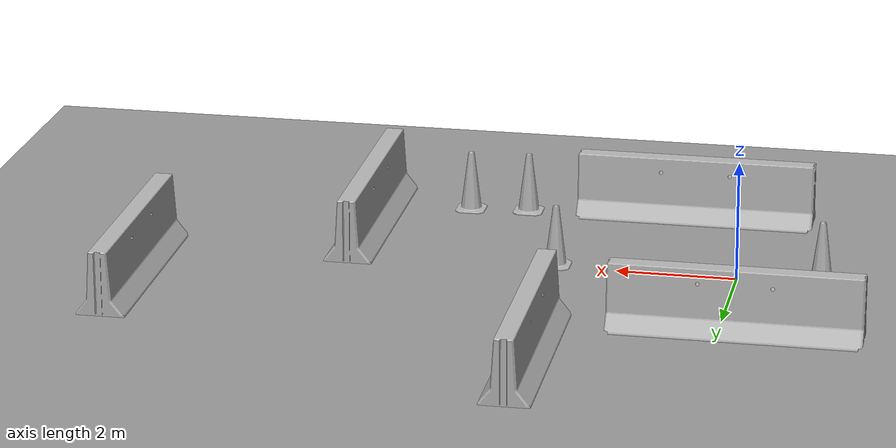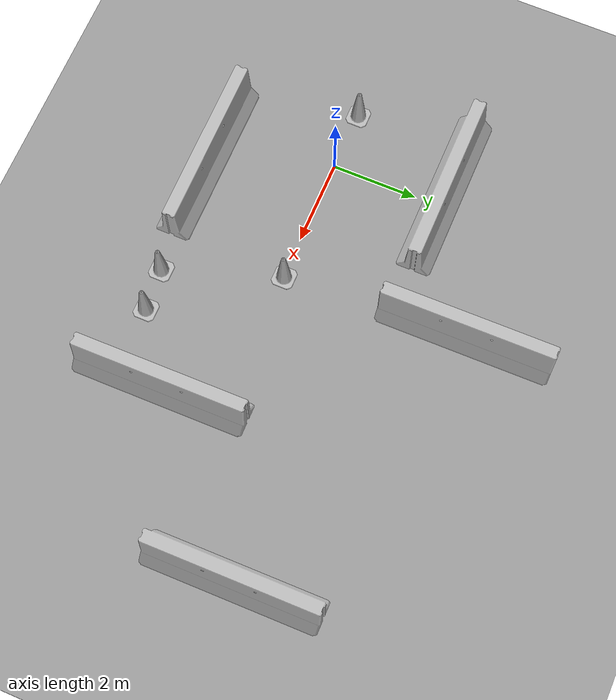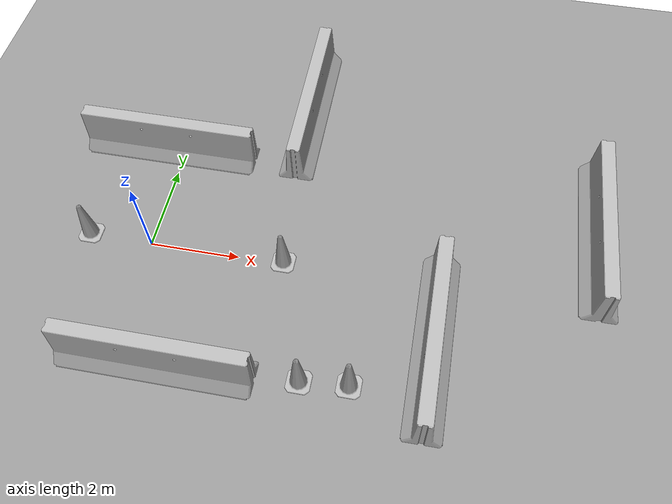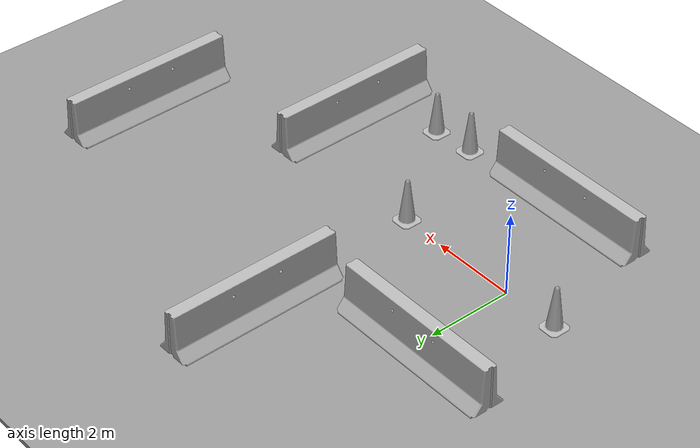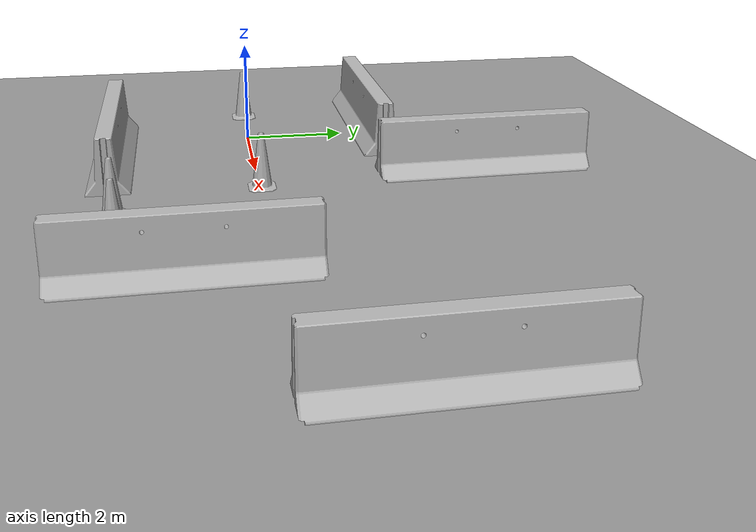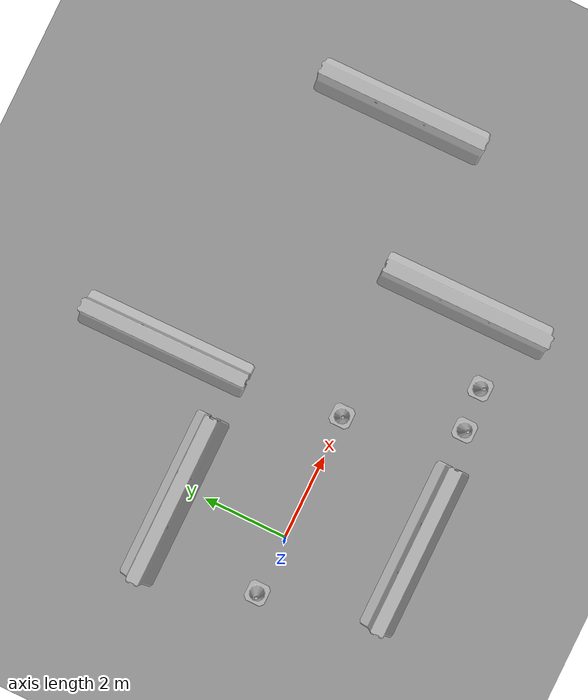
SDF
<sdf version="1.7">
 <world name="default">
  <plugin name="gazebo_occupancy_map" filename="libgazebo_2Dmap_plugin.so">
   <map_resolution>0.1</map_resolution>
   <map_height>0.3</map_height>
   <map_size_x>100</map_size_x>
   <map_size_y>100</map_size_y>
   <init_robot_x>0</init_robot_x>
   <init_robot_y>0</init_robot_y>
  </plugin>
  <light name="sun" type="directional">
   <pose>0 0 10 0 -0 0</pose>
   <diffuse>0.8 0.8 0.8 1</diffuse>
   <specular>0.2 0.2 0.2 1</specular>
   <attenuation>
    <range>1000</range>
    <constant>0.9</constant>
    <linear>0.01</linear>
    <quadratic>0.001</quadratic>
   </attenuation>
   <direction>-0.5 0.1 -0.9</direction>
   <spot><inner_angle>0</inner_angle><outer_angle>0</outer_angle><falloff>0</falloff></spot>
  </light>
  <model name="ground_plane">
   <static>1</static>
   <link name="link">
    <collision name="collision">
     <geometry><plane><normal>0 0 1</normal><size>100 100</size></plane></geometry>
     <surface>
      <contact><collide_bitmask>65535</collide_bitmask></contact>
      <friction><ode><mu>100</mu><mu2>50</mu2></ode></friction>
     </surface>
    </collision>
    <visual name="visual">
     <cast_shadows>0</cast_shadows>
     <geometry><plane><normal>0 0 1</normal><size>100 100</size></plane></geometry>
     <material>
      <script><uri>file://media/materials/scripts/gazebo.material</uri><name>Gazebo/Grey</name></script>
     </material>
    </visual>
   </link>
  </model>
  <gravity>0 0 -9.8</gravity>
  <magnetic_field>6e-06 2.3e-05 -4.2e-05</magnetic_field>
  <atmosphere type="adiabatic"/>
  <physics type="ode">
   <max_step_size>0.001</max_step_size>
   <real_time_factor>1</real_time_factor>
   <real_time_update_rate>1000</real_time_update_rate>
  </physics>
  <scene><ambient>0.4 0.4 0.4 1</ambient><background>0.7 0.7 0.7 1</background><shadows>0</shadows></scene>
  <spherical_coordinates>
   <surface_model>EARTH_WGS84</surface_model>
   <latitude_deg>0</latitude_deg>
   <longitude_deg>0</longitude_deg>
   <elevation>0</elevation>
   <heading_deg>0</heading_deg>
  </spherical_coordinates>
  <model name="ground_plane_0">
   <static>1</static>
   <link name="link">
    <collision name="collision">
     <geometry><plane><normal>0 0 1</normal><size>200 200</size></plane></geometry>
     <surface>
      <contact><collide_bitmask>65535</collide_bitmask></contact>
      <friction><ode><mu>100</mu><mu2>50</mu2></ode></friction>
     </surface>
    </collision>
    <visual name="visual">
     <cast_shadows>0</cast_shadows>
     <geometry><plane><normal>0 0 1</normal><size>100 100</size></plane></geometry>
     <material>
      <script><uri>file://media/materials/scripts/gazebo.material</uri><name>Gazebo/Grey</name></script>
     </material>
    </visual>
   </link>
   <pose>0.399593 -2.94754 0 0 -0 0</pose>
  </model>
  <model name="Construction Cone">
   <link name="link">
    <collision name="collision">
     <geometry>
      <mesh><scale>10 10 10</scale><uri>model://construction_cone/meshes/construction_cone.dae</uri></mesh>
     </geometry>
    </collision>
    <visual name="visual">
     <geometry>
      <mesh><scale>10 10 10</scale><uri>model://construction_cone/meshes/construction_cone.dae</uri></mesh>
     </geometry>
    </visual>
    <inertial>
     <inertia><ixx>1</ixx><ixy>0</ixy><ixz>0</ixz><iyy>1</iyy><iyz>0</iyz><izz>1</izz></inertia>
     <mass>1</mass>
    </inertial>
   </link>
   <pose>3.92679 -2.58008 -0 0 -1e-06 0</pose>
  </model>
  <model name="Construction Cone_clone_0">
   <link name="link">
    <collision name="collision">
     <geometry>
      <mesh><scale>10 10 10</scale><uri>model://construction_cone/meshes/construction_cone.dae</uri></mesh>
     </geometry>
    </collision>
    <visual name="visual">
     <geometry>
      <mesh><scale>10 10 10</scale><uri>model://construction_cone/meshes/construction_cone.dae</uri></mesh>
     </geometry>
    </visual>
    <inertial>
     <inertia><ixx>1</ixx><ixy>0</ixy><ixz>0</ixz><iyy>1</iyy><iyz>0</iyz><izz>1</izz></inertia>
     <mass>1</mass>
    </inertial>
   </link>
   <pose>4.92449 -2.49469 -0 0 -1e-06 0</pose>
  </model>
  <model name="Construction Cone_clone_1">
   <link name="link">
    <collision name="collision">
     <geometry>
      <mesh><scale>10 10 10</scale><uri>model://construction_cone/meshes/construction_cone.dae</uri></mesh>
     </geometry>
    </collision>
    <visual name="visual">
     <geometry>
      <mesh><scale>10 10 10</scale><uri>model://construction_cone/meshes/construction_cone.dae</uri></mesh>
     </geometry>
    </visual>
    <inertial>
     <inertia><ixx>1</ixx><ixy>0</ixy><ixz>0</ixz><iyy>1</iyy><iyz>0</iyz><izz>1</izz></inertia>
     <mass>1</mass>
    </inertial>
   </link>
   <pose>3.01083 0.03558 -0 0 -1e-06 0</pose>
  </model>
  <model name="Construction Cone_clone">
   <link name="link">
    <collision name="collision">
     <geometry>
      <mesh><scale>10 10 10</scale><uri>model://construction_cone/meshes/construction_cone.dae</uri></mesh>
     </geometry>
    </collision>
    <visual name="visual">
     <geometry>
      <mesh><scale>10 10 10</scale><uri>model://construction_cone/meshes/construction_cone.dae</uri></mesh>
     </geometry>
    </visual>
    <inertial>
     <inertia><ixx>1</ixx><ixy>0</ixy><ixz>0</ixz><iyy>1</iyy><iyz>0</iyz><izz>1</izz></inertia>
     <mass>1</mass>
    </inertial>
   </link>
   <pose>-1.39742 0.016239 -0 0 -1e-06 0</pose>
  </model>
  <model name="jersey_barrier">
   <static>1</static>
   <link name="link">
    <visual name="visual">
     <geometry><mesh><uri>model://jersey_barrier/meshes/jersey_barrier.dae</uri></mesh></geometry>
    </visual>
    <collision name="upright">
     <pose>0 0 0.5715 0 -0 0</pose>
     <geometry><box><size>4.06542 0.3063 1.143</size></box></geometry>
    </collision>
    <collision name="base">
     <pose>0 0 0.032258 0 -0 0</pose>
     <geometry><box><size>4.06542 0.8107 0.064516</size></box></geometry>
    </collision>
    <collision name="base2">
     <pose>0 0 0.1 0 -0 0</pose>
     <geometry><box><size>4.06542 0.65 0.1</size></box></geometry>
    </collision>
    <collision name="base3">
     <pose>0 0 0.2 0 -0 0</pose>
     <geometry><box><size>4.06542 0.5 0.1</size></box></geometry>
    </collision>
    <collision name="left-angle">
     <pose>0 -0.224 0.2401 0.9 -0 0</pose>
     <geometry><box><size>4.06542 0.5 0.064516</size></box></geometry>
    </collision>
    <collision name="right-angle">
     <pose>0 0.224 0.2401 -0.9 0 0</pose>
     <geometry><box><size>4.06542 0.5 0.064516</size></box></geometry>
    </collision>
   </link>
   <pose>1.03356 -2.72574 0 0 -0 0</pose>
  </model>
  <model name="jersey_barrier_clone_1">
   <static>1</static>
   <link name="link">
    <visual name="visual">
     <geometry><mesh><uri>model://jersey_barrier/meshes/jersey_barrier.dae</uri></mesh></geometry>
    </visual>
    <collision name="upright">
     <pose>0 0 0.5715 0 -0 0</pose>
     <geometry><box><size>4.06542 0.3063 1.143</size></box></geometry>
    </collision>
    <collision name="base">
     <pose>0 0 0.032258 0 -0 0</pose>
     <geometry><box><size>4.06542 0.8107 0.064516</size></box></geometry>
    </collision>
    <collision name="base2">
     <pose>0 0 0.1 0 -0 0</pose>
     <geometry><box><size>4.06542 0.65 0.1</size></box></geometry>
    </collision>
    <collision name="base3">
     <pose>0 0 0.2 0 -0 0</pose>
     <geometry><box><size>4.06542 0.5 0.1</size></box></geometry>
    </collision>
    <collision name="left-angle">
     <pose>0 -0.224 0.2401 0.9 -0 0</pose>
     <geometry><box><size>4.06542 0.5 0.064516</size></box></geometry>
    </collision>
    <collision name="right-angle">
     <pose>0 0.224 0.2401 -0.9 0 0</pose>
     <geometry><box><size>4.06542 0.5 0.064516</size></box></geometry>
    </collision>
   </link>
   <pose>-0.286482 2.6154 0 0 -0 0</pose>
  </model>
  <model name="jersey_barrier_clone_2">
   <static>1</static>
   <link name="link">
    <visual name="visual">
     <geometry><mesh><uri>model://jersey_barrier/meshes/jersey_barrier.dae</uri></mesh></geometry>
    </visual>
    <collision name="upright">
     <pose>0 0 0.5715 0 -0 0</pose>
     <geometry><box><size>4.06542 0.3063 1.143</size></box></geometry>
    </collision>
    <collision name="base">
     <pose>0 0 0.032258 0 -0 0</pose>
     <geometry><box><size>4.06542 0.8107 0.064516</size></box></geometry>
    </collision>
    <collision name="base2">
     <pose>0 0 0.1 0 -0 0</pose>
     <geometry><box><size>4.06542 0.65 0.1</size></box></geometry>
    </collision>
    <collision name="base3">
     <pose>0 0 0.2 0 -0 0</pose>
     <geometry><box><size>4.06542 0.5 0.1</size></box></geometry>
    </collision>
    <collision name="left-angle">
     <pose>0 -0.224 0.2401 0.9 -0 0</pose>
     <geometry><box><size>4.06542 0.5 0.064516</size></box></geometry>
    </collision>
    <collision name="right-angle">
     <pose>0 0.224 0.2401 -0.9 0 0</pose>
     <geometry><box><size>4.06542 0.5 0.064516</size></box></geometry>
    </collision>
   </link>
   <pose>6.44791 -1.37372 0 0 -0 1.58024</pose>
  </model>
  <model name="jersey_barrier_clone_2_clone">
   <static>1</static>
   <link name="link">
    <visual name="visual">
     <geometry><mesh><uri>model://jersey_barrier/meshes/jersey_barrier.dae</uri></mesh></geometry>
    </visual>
    <collision name="upright">
     <pose>0 0 0.5715 0 -0 0</pose>
     <geometry><box><size>4.06542 0.3063 1.143</size></box></geometry>
    </collision>
    <collision name="base">
     <pose>0 0 0.032258 0 -0 0</pose>
     <geometry><box><size>4.06542 0.8107 0.064516</size></box></geometry>
    </collision>
    <collision name="base2">
     <pose>0 0 0.1 0 -0 0</pose>
     <geometry><box><size>4.06542 0.65 0.1</size></box></geometry>
    </collision>
    <collision name="base3">
     <pose>0 0 0.2 0 -0 0</pose>
     <geometry><box><size>4.06542 0.5 0.1</size></box></geometry>
    </collision>
    <collision name="left-angle">
     <pose>0 -0.224 0.2401 0.9 -0 0</pose>
     <geometry><box><size>4.06542 0.5 0.064516</size></box></geometry>
    </collision>
    <collision name="right-angle">
     <pose>0 0.224 0.2401 -0.9 0 0</pose>
     <geometry><box><size>4.06542 0.5 0.064516</size></box></geometry>
    </collision>
   </link>
   <pose>9.76345 1.81053 0 0 -0 1.58024</pose>
  </model>
  <model name="jersey_barrier_clone_2_clone_0">
   <static>1</static>
   <link name="link">
    <visual name="visual">
     <geometry><mesh><uri>model://jersey_barrier/meshes/jersey_barrier.dae</uri></mesh></geometry>
    </visual>
    <collision name="upright">
     <pose>0 0 0.5715 0 -0 0</pose>
     <geometry><box><size>4.06542 0.3063 1.143</size></box></geometry>
    </collision>
    <collision name="base">
     <pose>0 0 0.032258 0 -0 0</pose>
     <geometry><box><size>4.06542 0.8107 0.064516</size></box></geometry>
    </collision>
    <collision name="base2">
     <pose>0 0 0.1 0 -0 0</pose>
     <geometry><box><size>4.06542 0.65 0.1</size></box></geometry>
    </collision>
    <collision name="base3">
     <pose>0 0 0.2 0 -0 0</pose>
     <geometry><box><size>4.06542 0.5 0.1</size></box></geometry>
    </collision>
    <collision name="left-angle">
     <pose>0 -0.224 0.2401 0.9 -0 0</pose>
     <geometry><box><size>4.06542 0.5 0.064516</size></box></geometry>
    </collision>
    <collision name="right-angle">
     <pose>0 0.224 0.2401 -0.9 0 0</pose>
     <geometry><box><size>4.06542 0.5 0.064516</size></box></geometry>
    </collision>
   </link>
   <pose>2.75571 4.30007 0 0 -0 1.58024</pose>
  </model>
 </world>
</sdf>
